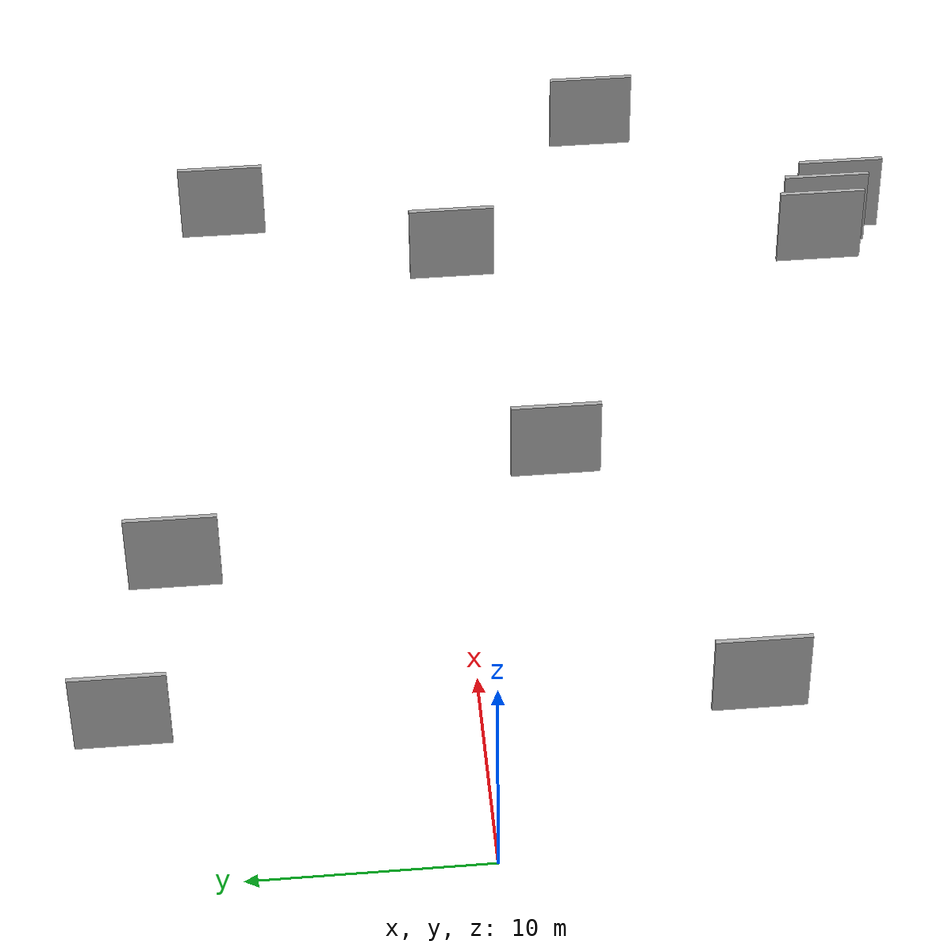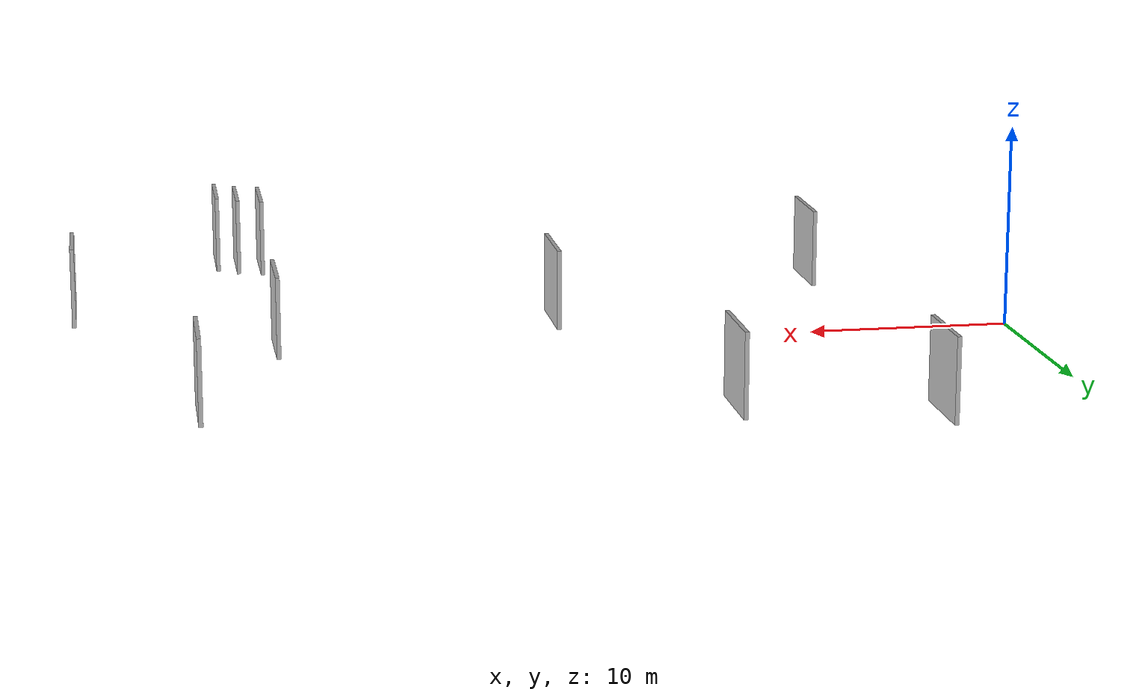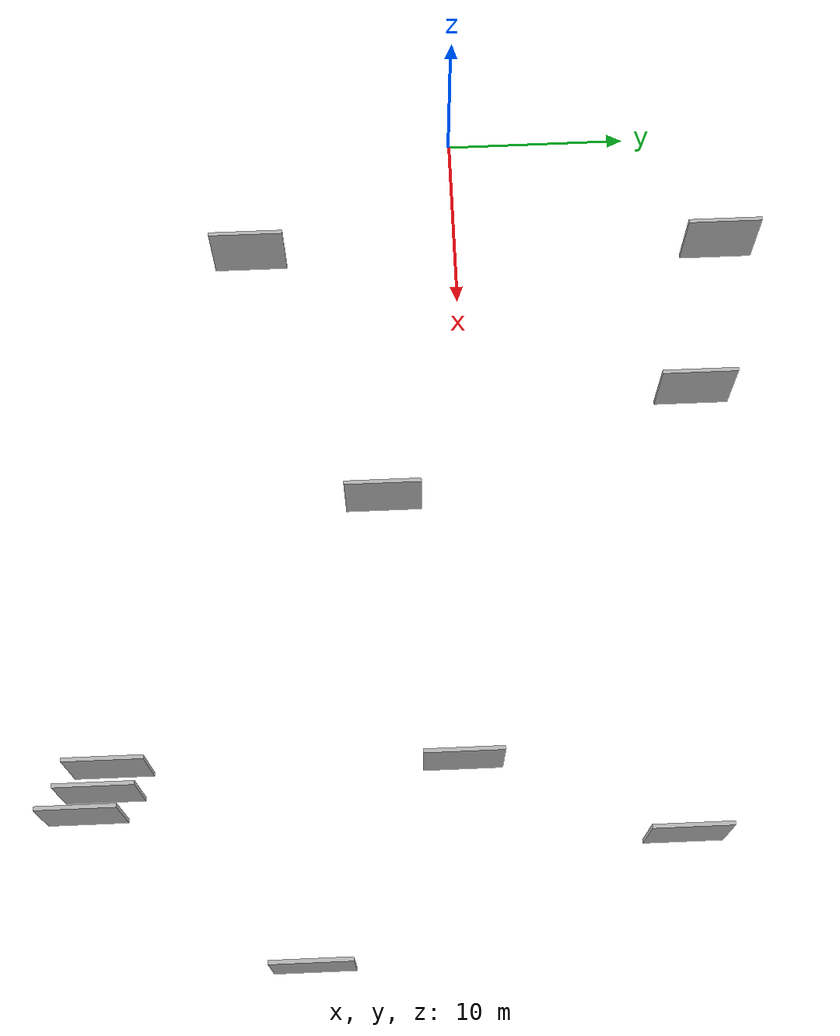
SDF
<sdf version="1.6">
 <world name="default">
  <scene>
   <sky><clouds><speed>12</speed></clouds></sky>
   <ambient>0.4 0.4 0.4 1</ambient>
   <background>0.7 0.7 0.7 1</background>
   <shadows>1</shadows>
  </scene>
  <gravity>0 0 -9.8066</gravity>
  <magnetic_field>6e-06 2.3e-05 -4.2e-05</magnetic_field>
  <physics default="0" name="default_physics" type="ode">
   <ode>
    <solver>
     <type>quick</type>
     <iters>10</iters>
     <sor>1.0</sor>
     <use_dynamic_moi_rescaling>0</use_dynamic_moi_rescaling>
    </solver>
    <constraints>
     <cfm>0</cfm>
     <erp>0.2</erp>
     <contact_max_correcting_vel>100</contact_max_correcting_vel>
     <contact_surface_layer>0.001</contact_surface_layer>
    </constraints>
   </ode>
   <max_step_size>0.004</max_step_size>
   <real_time_factor>1</real_time_factor>
   <real_time_update_rate>250</real_time_update_rate>
  </physics>
  <light name="sun" type="directional">
   <pose>0 0 10 0 0 0</pose>
   <diffuse>0.8 0.8 0.8 1</diffuse>
   <specular>0.2 0.2 0.2 1</specular>
   <attenuation>
    <range>1000</range>
    <constant>0.9</constant>
    <linear>0.01</linear>
    <quadratic>0.001</quadratic>
   </attenuation>
   <direction>-0.5 0.1 -0.9</direction>
  </light>
  <model name="grey_wall_1">
   <static>1</static>
   <pose>16.6498 12.4130 0.0 0.000000 0.000000 1.570796</pose>
   <link name="link">
    <pose>0 0 2.00 0 0 0</pose>
    <collision name="collision"><geometry><box><size>4.00 0.2 4.00</size></box></geometry></collision>
    <visual name="visual">
     <cast_shadows>0</cast_shadows>
     <geometry><box><size>4.00 0.2 4.00</size></box></geometry>
     <material>
      <script>
       <uri>model://HANNAS_wall/materials/scripts</uri>
       <uri>model://HANNAS_wall/materials/textures</uri>
       <name>vrc/HANNAS_wall</name>
      </script>
     </material>
    </visual>
   </link>
  </model>
  <model name="grey_wall_2">
   <static>1</static>
   <pose>7.4128 -11.4895 0.0 0.000000 0.000000 1.570796</pose>
   <link name="link">
    <pose>0 0 2.00 0 0 0</pose>
    <collision name="collision"><geometry><box><size>4.00 0.2 4.00</size></box></geometry></collision>
    <visual name="visual">
     <cast_shadows>0</cast_shadows>
     <geometry><box><size>4.00 0.2 4.00</size></box></geometry>
     <material>
      <script>
       <uri>model://HANNAS_wall/materials/scripts</uri>
       <uri>model://HANNAS_wall/materials/textures</uri>
       <name>vrc/HANNAS_wall</name>
      </script>
     </material>
    </visual>
   </link>
  </model>
  <model name="grey_wall_3">
   <static>1</static>
   <pose>22.1962 -4.5380 0.0 0.000000 0.000000 1.570796</pose>
   <link name="link">
    <pose>0 0 2.00 0 0 0</pose>
    <collision name="collision"><geometry><box><size>4.00 0.2 4.00</size></box></geometry></collision>
    <visual name="visual">
     <cast_shadows>0</cast_shadows>
     <geometry><box><size>4.00 0.2 4.00</size></box></geometry>
     <material>
      <script>
       <uri>model://HANNAS_wall/materials/scripts</uri>
       <uri>model://HANNAS_wall/materials/textures</uri>
       <name>vrc/HANNAS_wall</name>
      </script>
     </material>
    </visual>
   </link>
  </model>
  <model name="grey_wall_4">
   <static>1</static>
   <pose>36.3099 -1.0308 0.0 0.000000 0.000000 1.570796</pose>
   <link name="link">
    <pose>0 0 2.00 0 0 0</pose>
    <collision name="collision"><geometry><box><size>4.00 0.2 4.00</size></box></geometry></collision>
    <visual name="visual">
     <cast_shadows>0</cast_shadows>
     <geometry><box><size>4.00 0.2 4.00</size></box></geometry>
     <material>
      <script>
       <uri>model://HANNAS_wall/materials/scripts</uri>
       <uri>model://HANNAS_wall/materials/textures</uri>
       <name>vrc/HANNAS_wall</name>
      </script>
     </material>
    </visual>
   </link>
  </model>
  <model name="grey_wall_5">
   <static>1</static>
   <pose>37.2620 -19.0056 0.0 0.000000 0.000000 1.570796</pose>
   <link name="link">
    <pose>0 0 2.00 0 0 0</pose>
    <collision name="collision"><geometry><box><size>4.00 0.2 4.00</size></box></geometry></collision>
    <visual name="visual">
     <cast_shadows>0</cast_shadows>
     <geometry><box><size>4.00 0.2 4.00</size></box></geometry>
     <material>
      <script>
       <uri>model://HANNAS_wall/materials/scripts</uri>
       <uri>model://HANNAS_wall/materials/textures</uri>
       <name>vrc/HANNAS_wall</name>
      </script>
     </material>
    </visual>
   </link>
  </model>
  <model name="grey_wall_6">
   <static>1</static>
   <pose>45.9630 -8.6779 0.0 0.000000 0.000000 1.570796</pose>
   <link name="link">
    <pose>0 0 2.00 0 0 0</pose>
    <collision name="collision"><geometry><box><size>4.00 0.2 4.00</size></box></geometry></collision>
    <visual name="visual">
     <cast_shadows>0</cast_shadows>
     <geometry><box><size>4.00 0.2 4.00</size></box></geometry>
     <material>
      <script>
       <uri>model://HANNAS_wall/materials/scripts</uri>
       <uri>model://HANNAS_wall/materials/textures</uri>
       <name>vrc/HANNAS_wall</name>
      </script>
     </material>
    </visual>
   </link>
  </model>
  <model name="grey_wall_7">
   <static>1</static>
   <pose>36.0165 -18.5975 0.0 0.000000 0.000000 1.570796</pose>
   <link name="link">
    <pose>0 0 2.00 0 0 0</pose>
    <collision name="collision"><geometry><box><size>4.00 0.2 4.00</size></box></geometry></collision>
    <visual name="visual">
     <cast_shadows>0</cast_shadows>
     <geometry><box><size>4.00 0.2 4.00</size></box></geometry>
     <material>
      <script>
       <uri>model://HANNAS_wall/materials/scripts</uri>
       <uri>model://HANNAS_wall/materials/textures</uri>
       <name>vrc/HANNAS_wall</name>
      </script>
     </material>
    </visual>
   </link>
  </model>
  <model name="grey_wall_8">
   <static>1</static>
   <pose>40.4255 9.7178 0.0 0.000000 0.000000 1.570796</pose>
   <link name="link">
    <pose>0 0 2.00 0 0 0</pose>
    <collision name="collision"><geometry><box><size>4.00 0.2 4.00</size></box></geometry></collision>
    <visual name="visual">
     <cast_shadows>0</cast_shadows>
     <geometry><box><size>4.00 0.2 4.00</size></box></geometry>
     <material>
      <script>
       <uri>model://HANNAS_wall/materials/scripts</uri>
       <uri>model://HANNAS_wall/materials/textures</uri>
       <name>vrc/HANNAS_wall</name>
      </script>
     </material>
    </visual>
   </link>
  </model>
  <model name="grey_wall_9">
   <static>1</static>
   <pose>7.6996 14.6647 0.0 0.000000 0.000000 1.570796</pose>
   <link name="link">
    <pose>0 0 2.00 0 0 0</pose>
    <collision name="collision"><geometry><box><size>4.00 0.2 4.00</size></box></geometry></collision>
    <visual name="visual">
     <cast_shadows>0</cast_shadows>
     <geometry><box><size>4.00 0.2 4.00</size></box></geometry>
     <material>
      <script>
       <uri>model://HANNAS_wall/materials/scripts</uri>
       <uri>model://HANNAS_wall/materials/textures</uri>
       <name>vrc/HANNAS_wall</name>
      </script>
     </material>
    </visual>
   </link>
  </model>
  <model name="grey_wall_10">
   <static>1</static>
   <pose>38.3256 -19.8483 0.0 0.000000 0.000000 1.570796</pose>
   <link name="link">
    <pose>0 0 2.00 0 0 0</pose>
    <collision name="collision"><geometry><box><size>4.00 0.2 4.00</size></box></geometry></collision>
    <visual name="visual">
     <cast_shadows>0</cast_shadows>
     <geometry><box><size>4.00 0.2 4.00</size></box></geometry>
     <material>
      <script>
       <uri>model://HANNAS_wall/materials/scripts</uri>
       <uri>model://HANNAS_wall/materials/textures</uri>
       <name>vrc/HANNAS_wall</name>
      </script>
     </material>
    </visual>
   </link>
  </model>
 </world>
</sdf>
